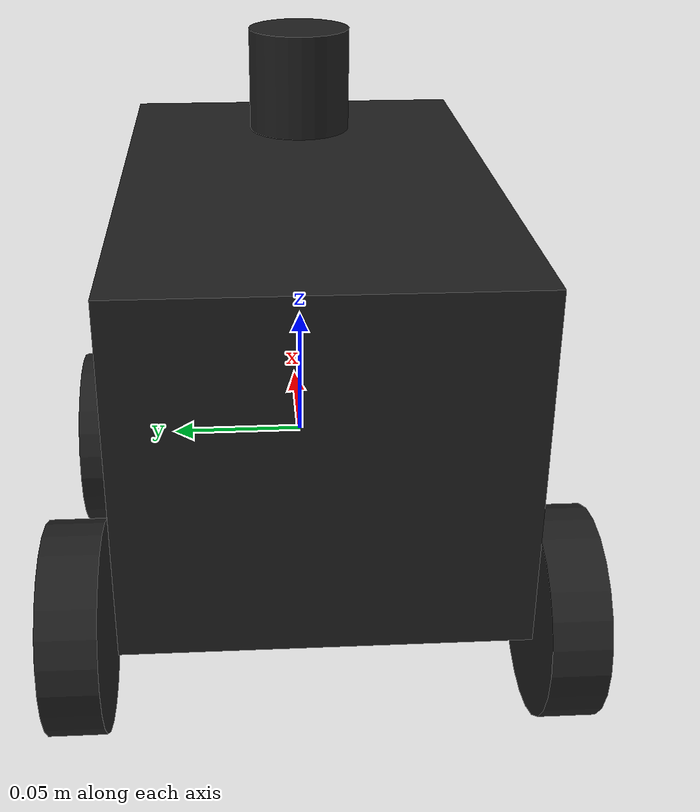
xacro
<?xml version="1.0" encoding="utf-8"?>
<robot name="rosbots" xmlns:xacro="http://www.ros.org/wiki/xacro">
    <xacro:include filename="$(find rosbots)/urdf/common_properties.xacro"/>
    <xacro:include filename="$(find rosbots)/urdf/rosbots.gazebo.xacro"/>
    <link name="base_footprint"/>

    <joint name="base_joint" type="fixed">
        <parent link="base_footprint"/>
        <child link="base_link" />
        <origin xyz="0 0 0.01" rpy="0 0 0"/>
    </joint>

    <link name="base_link">
        <visual>
        <origin xyz="-0.05 0 0.055" rpy="0 0 0"/>
        <geometry>
            <box size="0.2 0.12 0.11"/>
        </geometry>
        <material name="light_black"/>
        </visual>

        <collision>
        <origin xyz="-0.05 0 0.055" rpy="0 0 0"/>
        <geometry>
            <box size="0.2 0.12 0.11"/>
        </geometry>
        </collision>

        <inertial>
        <origin xyz="0 0 0" rpy="0 0 0"/>
        <mass value="1.3729096e+00"/>
        <inertia ixx="8.7002718e-03" ixy="-4.7576583e-05" ixz="1.1160499e-04"
                iyy="8.6195418e-03" iyz="-3.5422299e-06"
                izz="1.4612727e-02" />
        </inertial>
    </link>

    <joint name="wheel_left_joint" type="continuous">
        <parent link="base_link"/>
        <child link="wheel_left_link"/>
        <origin xyz="0.0 0.075 -0.011" rpy="-1.57 0 0"/>
        <axis xyz="0 0 1"/>
    </joint>

    <link name="wheel_left_link">
        <visual>
        <origin xyz="0 0 0" rpy="0 0 0"/>
        <geometry>
            <cylinder length="0.018" radius="0.033"/>
        </geometry>
        <material name="dark"/>
        </visual>

        <collision>
        <origin xyz="0 0 0" rpy="0 0 0"/>
        <geometry>
            <cylinder length="0.018" radius="0.033"/>
        </geometry>
        </collision>

        <inertial>
        <origin xyz="0 0 0" />
        <mass value="2.8498940e-02" />
        <inertia ixx="1.1175580e-05" ixy="-4.2369783e-11" ixz="-5.9381719e-09"
                iyy="1.1192413e-05" iyz="-1.4400107e-11"
                izz="2.0712558e-05" />
        </inertial>
    </link>

    <joint name="wheel_right_joint" type="continuous">
        <parent link="base_link"/>
        <child link="wheel_right_link"/>
        <origin xyz="0.0 -0.075 -0.011" rpy="-1.57 0 0"/>
        <axis xyz="0 0 1"/>
    </joint>

    <link name="wheel_right_link">
        <visual>
        <origin xyz="0 0 0" rpy="0 0 0"/>
        <geometry>
            <cylinder length="0.018" radius="0.033"/>
        </geometry>
        <material name="dark"/>
        </visual>

        <collision>
        <origin xyz="0 0 0" rpy="0 0 0"/>
        <geometry>
            <cylinder length="0.018" radius="0.033"/>
        </geometry>
        </collision>

        <inertial>
        <origin xyz="0 0 0" />
        <mass value="2.8498940e-02" />
        <inertia ixx="1.1175580e-05" ixy="-4.2369783e-11" ixz="-5.9381719e-09"
                iyy="1.1192413e-05" iyz="-1.4400107e-11"
                izz="2.0712558e-05" />
        </inertial>
    </link>

    <joint name="caster_back_right_joint" type="continuous">
        <parent link="base_link"/>
        <child link="caster_back_right_link"/>
        <origin xyz="-0.12 -0.075 -0.011" rpy="-1.57 0 0"/>
        <axis xyz="0 0 1"/>
    </joint>

    <link name="caster_back_right_link">
        <visual>
        <origin xyz="0 0.001 0" rpy="0 0 0"/>
        <geometry>
            <cylinder length="0.018" radius="0.033"/>
        </geometry>
        <material name="dark"/>
        </visual>

        <collision>
        <origin xyz="0 0.001 0" rpy="0 0 0"/>
        <geometry>
            <cylinder length="0.018" radius="0.033"/>
        </geometry>
        </collision>

        <inertial>
        <origin xyz="0 0 0" />
        <mass value="0.005" />
        <inertia ixx="0.001" ixy="0.0" ixz="0.0"
                iyy="0.001" iyz="0.0"
                izz="0.001" />
        </inertial>
    </link>

    <joint name="caster_back_left_joint" type="continuous">
        <parent link="base_link"/>
        <child link="caster_back_left_link"/>
        <origin xyz="-0.12 0.075 -0.011" rpy="-1.57 0 0"/>
        <axis xyz="0 0 1"/>
    </joint>

    <link name="caster_back_left_link">
        <visual>
        <origin xyz="0 0.001 0" rpy="0 0 0"/>
        <geometry>
            <cylinder length="0.018" radius="0.033"/>
        </geometry>
        <material name="dark"/>
        </visual>

        <collision>
        <origin xyz="0 0.001 0" rpy="0 0 0"/>
        <geometry>
            <cylinder length="0.018" radius="0.033"/>
        </geometry>
        </collision>

        <inertial>
        <origin xyz="0 0 0" />
        <mass value="0.005" />
        <inertia ixx="0.001" ixy="0.0" ixz="0.0"
                iyy="0.001" iyz="0.0"
                izz="0.001" />
        </inertial>
    </link>

    <joint name="scan_joint" type="fixed">
        <parent link="base_link"/>
        <child link="base_scan"/>
        <origin xyz="0 0 0.113" rpy="0 0 0"/>
    </joint>

    <link name="base_scan">
        <visual>
        <origin xyz="0 0 0.0175" rpy="0 0 0"/>
        <geometry>
            <cylinder length="0.035" radius="0.0175"/>
        </geometry>
        <material name="dark"/>
        </visual>

        <collision>
        <origin xyz="0 0 0.0175" rpy="0 0 0"/>
        <geometry>
            <cylinder length="0.035" radius="0.0175"/>
        </geometry>
        </collision>

        <inertial>
        <mass value="0.050" />
        <origin xyz="0 0 0" />
        <inertia ixx="8.93e-06" ixy="0.0" ixz="0.0"
                iyy="8.93e-06" iyz="0.0"
                izz="7.65e-06" />
        </inertial>
    </link>

</robot>
